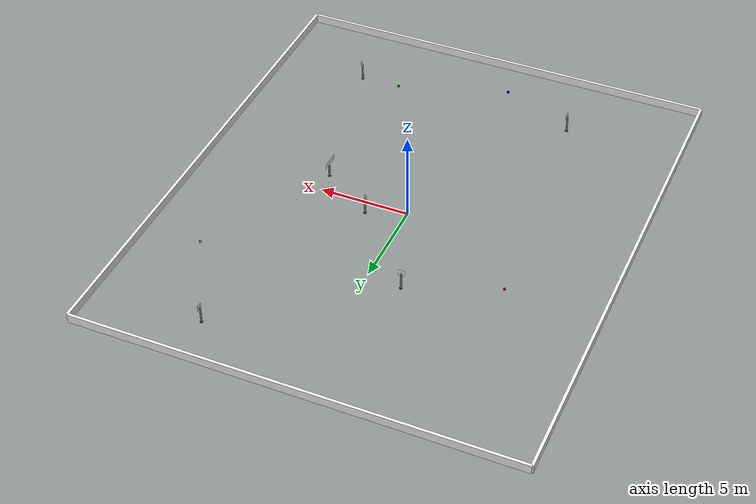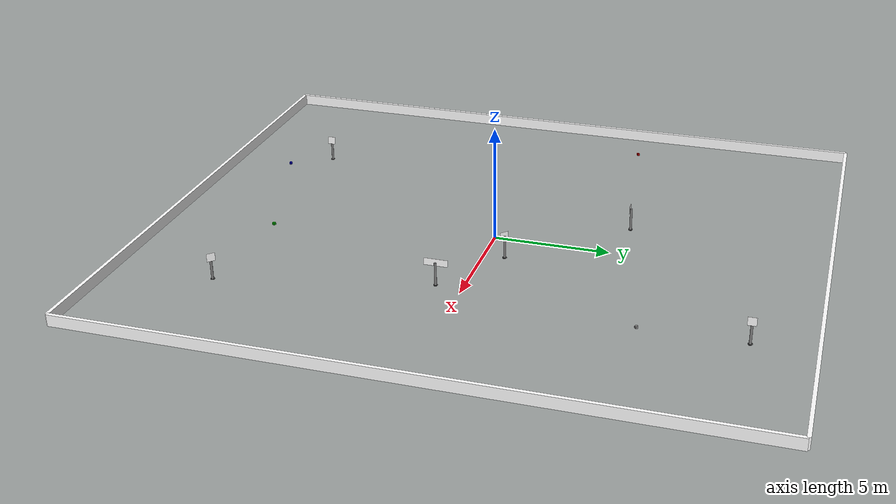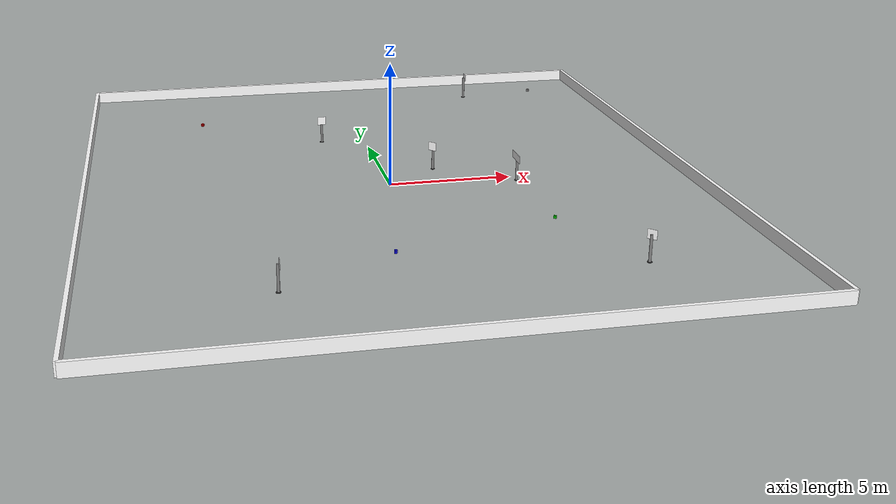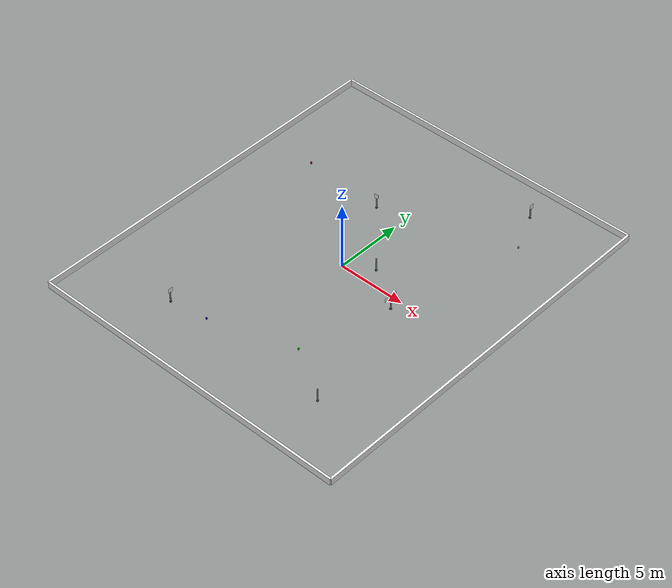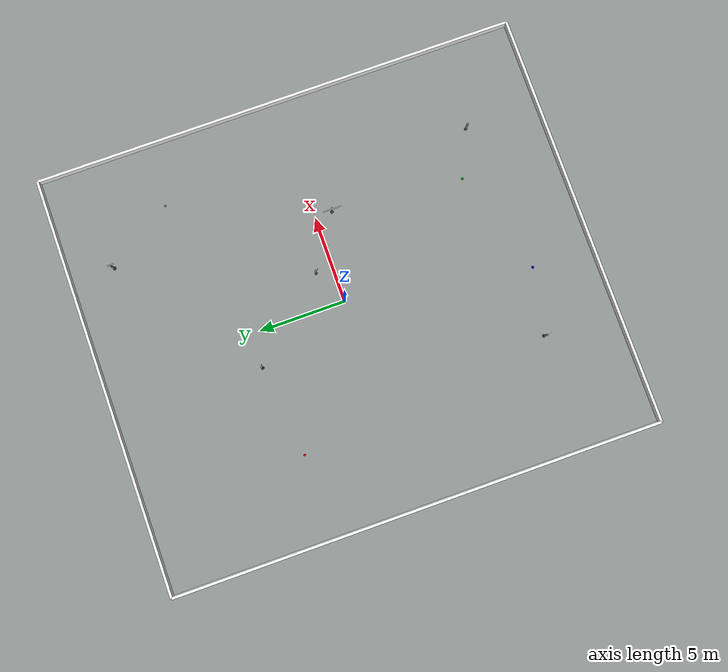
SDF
<sdf version="1.8">
 <world name="perseus_arc_world">
  <plugin filename="gz-sim-physics-system" name="gz::sim::systems::Physics"/>
  <plugin filename="gz-sim-user-commands-system" name="gz::sim::systems::UserCommands"/>
  <plugin filename="gz-sim-scene-broadcaster-system" name="gz::sim::systems::SceneBroadcaster"/>
  <plugin filename="gz-sim-sensors-system" name="gz::sim::systems::Sensors">
   <render_engine>ogre2</render_engine>
  </plugin>
  <plugin filename="gz-sim-imu-system" name="gz::sim::systems::Imu"/>
  <physics type="ode">
   <real_time_update_rate>1000.0</real_time_update_rate>
   <max_step_size>0.001</max_step_size>
   <real_time_factor>1</real_time_factor>
   <ode>
    <solver>
     <type>quick</type>
     <iters>150</iters>
     <precon_iters>0</precon_iters>
     <sor>1.400000</sor>
     <use_dynamic_moi_rescaling>1</use_dynamic_moi_rescaling>
    </solver>
    <constraints>
     <cfm>0.00001</cfm>
     <erp>0.2</erp>
     <contact_max_correcting_vel>2000.000000</contact_max_correcting_vel>
     <contact_surface_layer>0.01000</contact_surface_layer>
    </constraints>
   </ode>
  </physics>
  <light type="directional" name="sun">
   <pose>0 0 10 0 0 0</pose>
   <diffuse>0.8 0.8 0.8 1</diffuse>
   <specular>0.2 0.2 0.2 1</specular>
   <attenuation>
    <range>1000</range>
    <constant>0.9</constant>
    <linear>0.01</linear>
    <quadratic>0.001</quadratic>
   </attenuation>
   <direction>-0.5 0.1 -0.9</direction>
  </light>
  <ambient>1 1 1 1</ambient>
  <background>1 1 1 1</background>
  <include><uri>model://perseus_arc_world</uri></include>
  <include><uri>model://perseus_arc_world/aruco_markers1</uri><pose>6 11.5 0.5 0 0 3.14</pose></include>
  <include><uri>model://perseus_arc_world/aruco_markers2</uri><pose>7 -9.75 0.5 0 0 -2.35</pose></include>
  <include><uri>model://perseus_arc_world/aruco_markers3</uri><pose>2 1 0.5 0 0 0.78</pose></include>
  <include><uri>model://perseus_arc_world/aruco_markers4</uri><pose>-2 5.5 0.5 0 0 1.57</pose></include>
  <include><uri>model://perseus_arc_world/aruco_markers5</uri><pose>-5.5 -9.75 0.5 0 0 3.1412</pose></include>
  <include><uri>model://perseus_arc_world/text_marker</uri><pose>5 -1 0.5 0 0 0</pose></include>
  <include><uri>model://perseus_arc_world/cubes</uri></include>
 </world>
</sdf>

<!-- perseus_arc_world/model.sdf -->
<sdf version='1.8'>
  <model name='ARC_Zone'>
    <pose>0 0 0 0 0 0</pose>
    <static>true</static> <!-- Set false to allow physics and falling -->

    <!-- Wall East -->
    <link name='Wall_E'>
      <pose>12 0 0.45 0 0 1.5708</pose> <!-- 12m east, rotated 90 deg -->
      <collision name='Wall_E_Collision'>
        <geometry>
          <box>
            <size>28 0.15 0.5</size>
          </box>
        </geometry>
      </collision>
      <visual name='Wall_E_Visual'>
        <pose>0 0 0 0 0 0</pose>
        <geometry>
          <box>
            <size>28 0.15 0.5</size>
          </box>
        </geometry>
        <material>
          <pbr>
            <metal>
              <albedo_map>textures/arc_logo.png</albedo_map>
            </metal>
          </pbr>
          <ambient>1 1 1 1</ambient>
          <diffuse>1 1 1 1</diffuse>
          <specular>0.2 0.2 0.2 1</specular>
          <emissive>0 0 0 1</emissive>
        </material>
      </visual>
    </link>

    <!-- Wall North -->
    <link name='Wall_N'>
      <pose>0 14 0.45 0 0 0</pose> <!-- 14m north -->
      <collision name='Wall_N_Collision'>
        <geometry>
          <box>
            <size>24 0.15 0.5</size>
          </box>
        </geometry>
      </collision>
      <visual name='Wall_N_Visual'>
        <pose>0 0 0 0 0 0</pose>
        <geometry>
          <box>
            <size>24 0.15 0.5</size>
          </box>
        </geometry>
        <material>
          <pbr>
            <metal>
              <albedo_map>textures/arc_logo.png</albedo_map>
            </metal>
          </pbr>
          <ambient>1 1 1 1</ambient>
          <diffuse>1 1 1 1</diffuse>
          <specular>0.2 0.2 0.2 1</specular>
          <emissive>0 0 0 1</emissive>
        </material>
      </visual>
    </link>

    <!-- Wall West -->
    <link name='Wall_W'>
      <pose>-12 0 0.45 0 0 1.5708</pose> <!-- 12m west, rotated 90 deg -->
      <collision name='Wall_W_Collision'>
        <geometry>
          <box>
            <size>28 0.15 0.5</size>
          </box>
        </geometry>
      </collision>
      <visual name='Wall_W_Visual'>
        <pose>0 0 0 0 0 0</pose>
        <geometry>
          <box>
            <size>28 0.15 0.5</size>
          </box>
        </geometry>
        <material>
          <pbr>
            <metal>
              <albedo_map>textures/arc_logo.png</albedo_map>
            </metal>
          </pbr>
          <ambient>1 1 1 1</ambient>
          <diffuse>1 1 1 1</diffuse>
          <specular>0.2 0.2 0.2 1</specular>
          <emissive>0 0 0 1</emissive>
        </material>
      </visual>
    </link>

    <!-- Wall South -->
    <link name='Wall_S'>
      <pose>0 -14 0.45 0 0 0</pose> <!-- 14m south -->
      <collision name='Wall_S_Collision'>
        <geometry>
          <box>
            <size>24 0.15 0.5</size>
          </box>
        </geometry>
      </collision>
      <visual name='Wall_S_Visual'>
        <pose>0 0 0 0 0 0</pose>
        <geometry>
          <box>
            <size>24 0.15 0.5</size>
          </box>
        </geometry>
        <material>
          <pbr>
            <metal>
              <albedo_map>textures/arc_logo.png</albedo_map>
            </metal>
          </pbr>
          <ambient>1 1 1 1</ambient>
          <diffuse>1 1 1 1</diffuse>
          <specular>0.2 0.2 0.2 1</specular>
          <emissive>0 0 0 1</emissive>
        </material>
      </visual>
    </link>

    <!-- Fixed joints connecting walls (remove the last joint to break the loop) -->
    <joint name="joint_wall_e_n" type="fixed">
      <parent>Wall_E</parent>
      <child>Wall_N</child>
    </joint>

    <joint name="joint_wall_n_w" type="fixed">
      <parent>Wall_N</parent>
      <child>Wall_W</child>
    </joint>

    <joint name="joint_wall_w_s" type="fixed">
      <parent>Wall_W</parent>
      <child>Wall_S</child>
    </joint>

  </model>
</sdf>

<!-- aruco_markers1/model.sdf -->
<sdf version='1.8'>
  <model name='aruco_markers1'>
    <static>true</static>
    <pose>0 0 0.0 0 0 0</pose> <!-- Reset to origin, let world file control position -->

    <!-- Post/Pole - Main link -->
    <link name='post_link'>
      <pose>0 0 0.2 0 0 0</pose>
      <visual name='post_visual'>
        <geometry>
          <cylinder>
            <radius>0.05</radius>
            <length>1</length>
          </cylinder>
        </geometry>
        <material>
          <ambient>0.5 0.5 0.5 1</ambient>
          <diffuse>0.5 0.5 0.5 1</diffuse>
          <specular>0.1 0.1 0.1 1</specular>
          <emissive>0 0 0 1</emissive>
        </material>
      </visual>
      <collision name='post_collision'>
        <geometry>
          <cylinder>
            <radius>0.025</radius>
            <length>1.0</length>
          </cylinder>
        </geometry>
      </collision>

      <!-- Small base for stability -->
      <visual name='base_visual'>
        <pose>0 0 -0.485 0 0 0</pose>
        <geometry>
          <cylinder>
            <radius>0.09</radius>
            <length>0.02</length>
          </cylinder>
        </geometry>
        <material>
          <ambient>0.2 0.2 0.2 1</ambient>
          <diffuse>0.2 0.2 0.2 1</diffuse>
          <specular>0.1 0.1 0.1 1</specular>
          <emissive>0 0 0 1</emissive>
        </material>
      </visual>

      <collision name='base_collision'>
        <pose>0 0 -0.485 0 0 0</pose>
        <geometry>
          <cylinder>
            <radius>0.09</radius>
            <length>0.02</length>
          </cylinder>
        </geometry>
      </collision>

      <!-- ArUco plate as part of the same link -->
      <visual name='aruco_plate_visual'>
        <pose>-0.05 0 0.5 0 1.5708 0</pose> <!-- Relative to post center -->
        <geometry>
          <box>
            <size>0.35 0.35 0.005</size>
          </box>
        </geometry>
        <material>
          <pbr>
            <metal>
              <albedo_map>textures/aruco01.png</albedo_map>
            </metal>
          </pbr>
        <ambient>1 1 1 1</ambient>
        <diffuse>1 1 1 1</diffuse>
        <specular>0.1 0.1 0.1 1</specular>
        <emissive>0 0 0 1</emissive>
        </material>
      </visual>

      <collision name='aruco_plate_collision'>
        <pose>0.1 0 0.5 0 1.5708 0</pose> <!-- Same relative position -->
        <geometry>
          <box>
            <size>0.35 0.35 0.005</size>
          </box>
        </geometry>
      </collision>
    </link>
  </model>
</sdf>

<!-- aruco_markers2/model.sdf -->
<sdf version='1.8'>
  <model name='aruco_markers2'>
    <static>true</static>
    <pose>0 0 0.0 0 0 0</pose> <!-- Reset to origin, let world file control position -->

    <!-- Post/Pole - Main link -->
    <link name='post_link'>
      <pose>0 0 0.2 0 0 0</pose>
      <visual name='post_visual'>
        <geometry>
          <cylinder>
            <radius>0.05</radius>
            <length>1</length>
          </cylinder>
        </geometry>
        <material>
          <ambient>0.5 0.5 0.5 1</ambient>
          <diffuse>0.5 0.5 0.5 1</diffuse>
          <specular>0.1 0.1 0.1 1</specular>
          <emissive>0 0 0 1</emissive>
        </material>
      </visual>
      <collision name='post_collision'>
        <geometry>
          <cylinder>
            <radius>0.025</radius>
            <length>1.0</length>
          </cylinder>
        </geometry>
      </collision>

      <!-- Small base for stability -->
      <visual name='base_visual'>
        <pose>0 0 -0.485 0 0 0</pose>
        <geometry>
          <cylinder>
            <radius>0.09</radius>
            <length>0.02</length>
          </cylinder>
        </geometry>
        <material>
          <ambient>0.2 0.2 0.2 1</ambient>
          <diffuse>0.2 0.2 0.2 1</diffuse>
          <specular>0.1 0.1 0.1 1</specular>
          <emissive>0 0 0 1</emissive>
        </material>
      </visual>

      <collision name='base_collision'>
        <pose>0 0 -0.485 0 0 0</pose>
        <geometry>
          <cylinder>
            <radius>0.09</radius>
            <length>0.02</length>
          </cylinder>
        </geometry>
      </collision>

      <!-- ArUco plate as part of the same link -->
      <visual name='aruco_plate_visual'>
        <pose>-0.05 0 0.5 0 1.5708 0</pose> <!-- Relative to post center -->
        <geometry>
          <box>
            <size>0.35 0.35 0.005</size>
          </box>
        </geometry>
        <material>
          <pbr>
            <metal>
              <albedo_map>textures/aruco02.png</albedo_map>
            </metal>
          </pbr>
        <ambient>1 1 1 1</ambient>
        <diffuse>1 1 1 1</diffuse>
        <specular>0.1 0.1 0.1 1</specular>
        <emissive>0 0 0 1</emissive>
        </material>
      </visual>

      <collision name='aruco_plate_collision'>
        <pose>0.1 0 0.5 0 1.5708 0</pose> <!-- Same relative position -->
        <geometry>
          <box>
            <size>0.35 0.35 0.005</size>
          </box>
        </geometry>
      </collision>
    </link>
  </model>
</sdf>

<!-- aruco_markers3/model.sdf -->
<sdf version='1.8'>
  <model name='aruco_markers3'>
    <static>true</static>
    <pose>0 0 0.0 0 0 0</pose> <!-- Reset to origin, let world file control position -->

    <!-- Post/Pole - Main link -->
    <link name='post_link'>
      <pose>0 0 0.2 0 0 0</pose>
      <visual name='post_visual'>
        <geometry>
          <cylinder>
            <radius>0.05</radius>
            <length>1</length>
          </cylinder>
        </geometry>
        <material>
          <ambient>0.5 0.5 0.5 1</ambient>
          <diffuse>0.5 0.5 0.5 1</diffuse>
          <specular>0.1 0.1 0.1 1</specular>
          <emissive>0 0 0 1</emissive>
        </material>
      </visual>
      <collision name='post_collision'>
        <geometry>
          <cylinder>
            <radius>0.025</radius>
            <length>1.0</length>
          </cylinder>
        </geometry>
      </collision>

      <!-- Small base for stability -->
      <visual name='base_visual'>
        <pose>0 0 -0.485 0 0 0</pose>
        <geometry>
          <cylinder>
            <radius>0.09</radius>
            <length>0.02</length>
          </cylinder>
        </geometry>
        <material>
          <ambient>0.2 0.2 0.2 1</ambient>
          <diffuse>0.2 0.2 0.2 1</diffuse>
          <specular>0.1 0.1 0.1 1</specular>
          <emissive>0 0 0 1</emissive>
        </material>
      </visual>

      <collision name='base_collision'>
        <pose>0 0 -0.485 0 0 0</pose>
        <geometry>
          <cylinder>
            <radius>0.09</radius>
            <length>0.02</length>
          </cylinder>
        </geometry>
      </collision>

      <!-- ArUco plate as part of the same link -->
      <visual name='aruco_plate_visual'>
        <pose>-0.05 0 0.5 0 1.5708 0</pose> <!-- Relative to post center -->
        <geometry>
          <box>
            <size>0.35 0.35 0.005</size>
          </box>
        </geometry>
        <material>
          <pbr>
            <metal>
              <albedo_map>textures/aruco03.png</albedo_map>
            </metal>
          </pbr>
        <ambient>1 1 1 1</ambient>
        <diffuse>1 1 1 1</diffuse>
        <specular>0.1 0.1 0.1 1</specular>
        <emissive>0 0 0 1</emissive>
        </material>
      </visual>

      <collision name='aruco_plate_collision'>
        <pose>0.1 0 0.5 0 1.5708 0</pose> <!-- Same relative position -->
        <geometry>
          <box>
            <size>0.35 0.35 0.005</size>
          </box>
        </geometry>
      </collision>
    </link>
  </model>
</sdf>

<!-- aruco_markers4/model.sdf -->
<sdf version='1.8'>
  <model name='aruco_markers4'>
    <static>true</static>
    <pose>0 0 0.0 0 0 0</pose> <!-- Reset to origin, let world file control position -->

    <!-- Post/Pole - Main link -->
    <link name='post_link'>
      <pose>0 0 0.2 0 0 0</pose>
      <visual name='post_visual'>
        <geometry>
          <cylinder>
            <radius>0.05</radius>
            <length>1</length>
          </cylinder>
        </geometry>
        <material>
          <ambient>0.5 0.5 0.5 1</ambient>
          <diffuse>0.5 0.5 0.5 1</diffuse>
          <specular>0.1 0.1 0.1 1</specular>
          <emissive>0 0 0 1</emissive>
        </material>
      </visual>
      <collision name='post_collision'>
        <geometry>
          <cylinder>
            <radius>0.025</radius>
            <length>1.0</length>
          </cylinder>
        </geometry>
      </collision>

      <!-- Small base for stability -->
      <visual name='base_visual'>
        <pose>0 0 -0.485 0 0 0</pose>
        <geometry>
          <cylinder>
            <radius>0.09</radius>
            <length>0.02</length>
          </cylinder>
        </geometry>
        <material>
          <ambient>0.2 0.2 0.2 1</ambient>
          <diffuse>0.2 0.2 0.2 1</diffuse>
          <specular>0.1 0.1 0.1 1</specular>
          <emissive>0 0 0 1</emissive>
        </material>
      </visual>

      <collision name='base_collision'>
        <pose>0 0 -0.485 0 0 0</pose>
        <geometry>
          <cylinder>
            <radius>0.09</radius>
            <length>0.02</length>
          </cylinder>
        </geometry>
      </collision>

      <!-- ArUco plate as part of the same link -->
      <visual name='aruco_plate_visual'>
        <pose>-0.05 0 0.5 0 1.5708 0</pose> <!-- Relative to post center -->
        <geometry>
          <box>
            <size>0.35 0.35 0.005</size>
          </box>
        </geometry>
        <material>
          <pbr>
            <metal>
              <albedo_map>textures/aruco04.png</albedo_map>
            </metal>
          </pbr>
        <ambient>1 1 1 1</ambient>
        <diffuse>1 1 1 1</diffuse>
        <specular>0.1 0.1 0.1 1</specular>
        <emissive>0 0 0 1</emissive>
        </material>
      </visual>

      <collision name='aruco_plate_collision'>
        <pose>0.1 0 0.5 0 1.5708 0</pose> <!-- Same relative position -->
        <geometry>
          <box>
            <size>0.35 0.35 0.005</size>
          </box>
        </geometry>
      </collision>
    </link>
  </model>
</sdf>

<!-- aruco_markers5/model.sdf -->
<sdf version='1.8'>
  <model name='aruco_markers5'>
    <static>true</static>
    <pose>0 0 0.0 0 0 0</pose> <!-- Reset to origin, let world file control position -->

    <!-- Post/Pole - Main link -->
    <link name='post_link'>
      <pose>0 0 0.2 0 0 0</pose>
      <visual name='post_visual'>
        <geometry>
          <cylinder>
            <radius>0.05</radius>
            <length>1</length>
          </cylinder>
        </geometry>
        <material>
          <ambient>0.5 0.5 0.5 1</ambient>
          <diffuse>0.5 0.5 0.5 1</diffuse>
          <specular>0.1 0.1 0.1 1</specular>
          <emissive>0 0 0 1</emissive>
        </material>
      </visual>
      <collision name='post_collision'>
        <geometry>
          <cylinder>
            <radius>0.025</radius>
            <length>1.0</length>
          </cylinder>
        </geometry>
      </collision>

      <!-- Small base for stability -->
      <visual name='base_visual'>
        <pose>0 0 -0.485 0 0 0</pose>
        <geometry>
          <cylinder>
            <radius>0.09</radius>
            <length>0.02</length>
          </cylinder>
        </geometry>
        <material>
          <ambient>0.2 0.2 0.2 1</ambient>
          <diffuse>0.2 0.2 0.2 1</diffuse>
          <specular>0.1 0.1 0.1 1</specular>
          <emissive>0 0 0 1</emissive>
        </material>
      </visual>

      <collision name='base_collision'>
        <pose>0 0 -0.485 0 0 0</pose>
        <geometry>
          <cylinder>
            <radius>0.09</radius>
            <length>0.02</length>
          </cylinder>
        </geometry>
      </collision>

      <!-- ArUco plate as part of the same link -->
      <visual name='aruco_plate_visual'>
        <pose>-0.05 0 0.5 0 1.5708 0</pose> <!-- Relative to post center -->
        <geometry>
          <box>
            <size>0.35 0.35 0.005</size>
          </box>
        </geometry>
        <material>
          <pbr>
            <metal>
              <albedo_map>textures/aruco05.png</albedo_map>
            </metal>
          </pbr>
        <ambient>1 1 1 1</ambient>
        <diffuse>1 1 1 1</diffuse>
        <specular>0.1 0.1 0.1 1</specular>
        <emissive>0 0 0 1</emissive>
        </material>
      </visual>

      <collision name='aruco_plate_collision'>
        <pose>0.1 0 0.5 0 1.5708 0</pose> <!-- Same relative position -->
        <geometry>
          <box>
            <size>0.35 0.35 0.005</size>
          </box>
        </geometry>
      </collision>
    </link>
  </model>
</sdf>

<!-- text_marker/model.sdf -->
<sdf version='1.8'>
  <model name='text_marker'>
    <static>true</static>
    <pose>0 0 0.0 0 0 0</pose> <!-- Reset to origin, let world file control position -->

    <!-- Post/Pole - Main link -->
    <link name='post_link'>
      <pose>0 0 0.2 0 0 0</pose>
      <visual name='post_visual'>
        <geometry>
          <cylinder>
            <radius>0.05</radius>
            <length>1</length>
          </cylinder>
        </geometry>
        <material>
          <ambient>0.5 0.5 0.5 1</ambient>
          <diffuse>0.5 0.5 0.5 1</diffuse>
          <specular>0.1 0.1 0.1 1</specular>
          <emissive>0 0 0 1</emissive>
        </material>
      </visual>
      <collision name='post_collision'>
        <geometry>
          <cylinder>
            <radius>0.025</radius>
            <length>1.0</length>
          </cylinder>
        </geometry>
      </collision>

      <!-- Small base for stability -->
      <visual name='base_visual'>
        <pose>0 0 -0.485 0 0 0</pose>
        <geometry>
          <cylinder>
            <radius>0.09</radius>
            <length>0.02</length>
          </cylinder>
        </geometry>
        <material>
          <ambient>0.2 0.2 0.2 1</ambient>
          <diffuse>0.2 0.2 0.2 1</diffuse>
          <specular>0.1 0.1 0.1 1</specular>
          <emissive>0 0 0 1</emissive>
        </material>
      </visual>

      <collision name='base_collision'>
        <pose>0 0 -0.485 0 0 0</pose>
        <geometry>
          <cylinder>
            <radius>0.09</radius>
            <length>0.02</length>
          </cylinder>
        </geometry>
      </collision>

      <!-- ArUco plate as part of the same link -->
      <visual name='text_plate_visual'>
        <pose>-0.05 0 0.5 0 1.5708 0</pose> <!-- Relative to post center -->
        <geometry>
          <box>
            <size>0.3 1 0.005</size>
          </box>
        </geometry>
        <material>
          <pbr>
            <metal>
              <albedo_map>textures/text.png</albedo_map>
            </metal>
          </pbr>
        <ambient>1 1 1 1</ambient>
        <diffuse>1 1 1 1</diffuse>
        <specular>0.1 0.1 0.1 1</specular>
        <emissive>0 0 0 1</emissive>
        </material>
      </visual>

      <collision name='text_plate_collision'>
        <pose>0.1 0 0.5 0 1.5708 0</pose> <!-- Same relative position -->
        <geometry>
          <box>
            <size>0.3 1 0.005</size>
          </box>
        </geometry>
      </collision>
    </link>
  </model>
</sdf>

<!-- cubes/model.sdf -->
<sdf version='1.8'>
  <model name='cubes'>
    <pose>0 0 0 0 0 0</pose>
    <static>false</static>

    <link name='cube_1'>
      <pose>-7.2 4.8 1.5 0 0 0.7</pose>
      <collision name='cube_1_collision'>
        <geometry>
          <box>
            <size>0.1 0.1 0.1</size>
          </box>
        </geometry>
      </collision>
      <visual name='cube_1_visual'>
        <geometry>
          <box>
            <size>0.1 0.1 0.1</size>
          </box>
        </geometry>
        <material>
          <ambient>0.5 0 0 1</ambient>
          <diffuse>0.7 0 0 1</diffuse>
          <specular>0.2 0 0 1</specular>
        </material>
      </visual>
      <inertial>
        <mass>0.1</mass>
        <inertia>
          <ixx>0.000167</ixx>
          <ixy>0</ixy>
          <ixz>0</ixz>
          <iyy>0.000167</iyy>
          <iyz>0</iyz>
          <izz>0.000167</izz>
        </inertia>
      </inertial>
    </link>
    <link name='cube_2'>
      <pose>4.1 -8.3 1.5 0 0 -0.4</pose>
      <collision name='cube_2_collision'>
        <geometry>
          <box>
            <size>0.1 0.1 0.1</size>
          </box>
        </geometry>
      </collision>
      <visual name='cube_2_visual'>
        <geometry>
          <box>
            <size>0.1 0.1 0.1</size>
          </box>
        </geometry>
        <material>
          <ambient>0 0.4 0 1</ambient>
          <diffuse>0 0.6 0 1</diffuse>
          <specular>0 0.2 0 1</specular>
        </material>
      </visual>
      <inertial>
        <mass>0.1</mass>
        <inertia>
          <ixx>0.000167</ixx>
          <ixy>0</ixy>
          <ixz>0</ixz>
          <iyy>0.000167</iyy>
          <iyz>0</iyz>
          <izz>0.000167</izz>
        </inertia>
      </inertial>
    </link>
    <link name='cube_3'>
      <pose>-1.8 -10.2 1.5 0 0 1.2</pose>
      <collision name='cube_3_collision'>
        <geometry>
          <box>
            <size>0.1 0.1 0.1</size>
          </box>
        </geometry>
      </collision>
      <visual name='cube_3_visual'>
        <geometry>
          <box>
            <size>0.1 0.1 0.1</size>
          </box>
        </geometry>
        <material>
          <ambient>0 0 0.5 1</ambient>
          <diffuse>0 0 0.7 1</diffuse>
          <specular>0 0 0.2 1</specular>
        </material>
      </visual>
      <inertial>
        <mass>0.1</mass>
        <inertia>
          <ixx>0.000167</ixx>
          <ixy>0</ixy>
          <ixz>0</ixz>
          <iyy>0.000167</iyy>
          <iyz>0</iyz>
          <izz>0.000167</izz>
        </inertia>
      </inertial>
    </link>
    <link name='cube_4'>
      <pose>8.1 7.6 1.5 0 0 -0.9</pose>
      <collision name='cube_4_collision'>
        <geometry>
          <box>
            <size>0.1 0.1 0.1</size>
          </box>
        </geometry>
      </collision>
      <visual name='cube_4_visual'>
        <geometry>
          <box>
            <size>0.1 0.1 0.1</size>
          </box>
        </geometry>
        <material>
          <ambient>0.3 0.3 0.3 1</ambient>
          <diffuse>0.5 0.5 0.5 1</diffuse>
          <specular>0.1 0.1 0.1 1</specular>
        </material>
      </visual>
      <inertial>
        <mass>0.1</mass>
        <inertia>
          <ixx>0.000167</ixx>
          <ixy>0</ixy>
          <ixz>0</ixz>
          <iyy>0.000167</iyy>
          <iyz>0</iyz>
          <izz>0.000167</izz>
        </inertia>
      </inertial>
    </link>
  </model>
</sdf>
